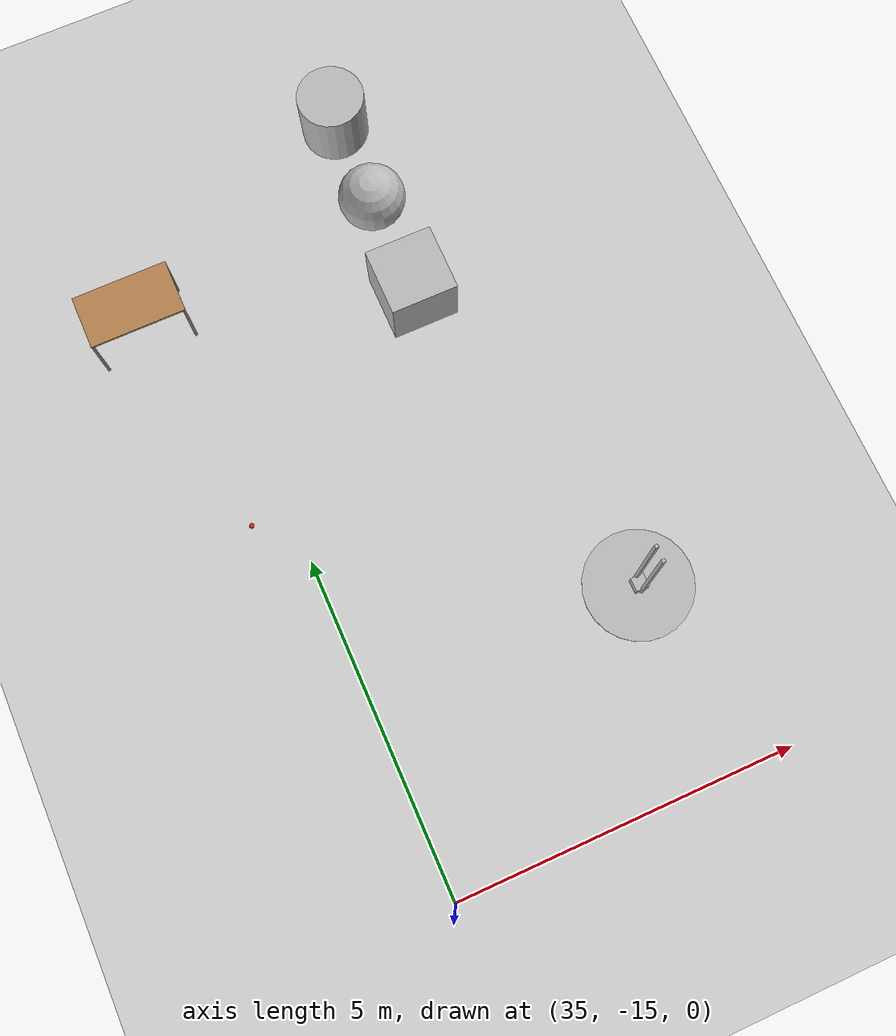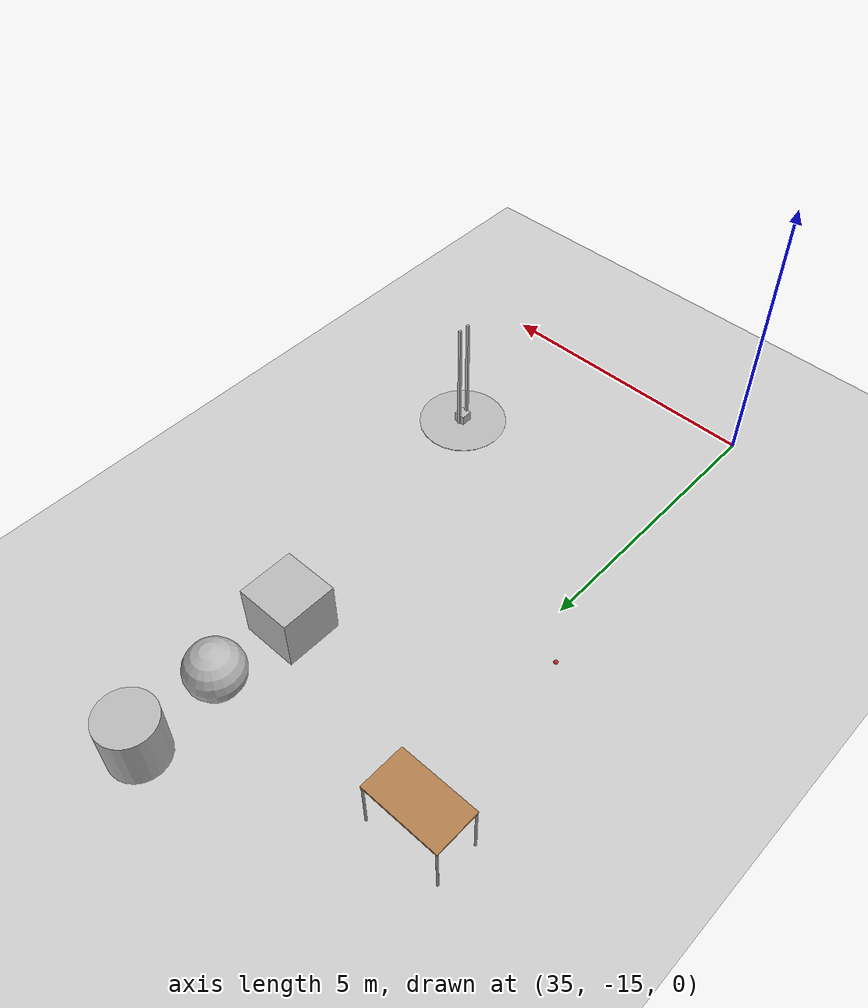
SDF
<sdf version="1.6">
 <world name="default">
  <model name="ground_plane">
   <static>1</static>
   <link name="link">
    <collision name="collision">
     <geometry><plane><normal>0 0 1</normal><size>100 100</size></plane></geometry>
     <surface><friction><ode><mu>100</mu><mu2>50</mu2></ode></friction></surface>
    </collision>
    <visual name="visual">
     <cast_shadows>0</cast_shadows>
     <geometry><plane><normal>0 0 1</normal><size>100 100</size></plane></geometry>
     <material>
      <script><uri>file://media/materials/scripts/gazebo.material</uri><name>Gazebo/Grey</name></script>
     </material>
    </visual>
   </link>
  </model>
  <model name="mass_on_rails">
   <link name="base">
    <inertial>
     <mass>100</mass>
     <inertia><ixx>1</ixx><ixy>0</ixy><ixz>0</ixz><iyy>1</iyy><iyz>0</iyz><izz>1</izz></inertia>
    </inertial>
    <visual name="vis_base">
     <pose>0 0 0.01 0 -0 0</pose>
     <geometry><cylinder><radius>0.8</radius><length>0.01</length></cylinder></geometry>
    </visual>
    <collision name="col_base">
     <pose>0 0 0.01 0 -0 0</pose>
     <geometry><cylinder><radius>0.8</radius><length>0.01</length></cylinder></geometry>
    </collision>
    <visual name="vis_rail1">
     <pose>0 0.1 1.1 0 -0 0</pose>
     <geometry><box><size>0.05 0.05 2.2</size></box></geometry>
    </visual>
    <collision name="col_rail1">
     <pose>0 0.1 1.1 0 -0 0</pose>
     <geometry><box><size>0.05 0.05 2.2</size></box></geometry>
    </collision>
    <visual name="vis_rail2">
     <pose>0 -0.1 1.1 0 -0 0</pose>
     <geometry><box><size>0.05 0.05 2.2</size></box></geometry>
    </visual>
    <collision name="col_rail2">
     <pose>0 -0.1 1.1 0 -0 0</pose>
     <geometry><box><size>0.05 0.05 2.2</size></box></geometry>
    </collision>
   </link>
   <link name="mass">
    <inertial>
     <mass>0.1</mass>
     <pose>0 0 0.1 0 -0 0</pose>
     <inertia><ixx>0.00067</ixx><ixy>0</ixy><ixz>0</ixz><iyy>0.00067</iyy><iyz>0</iyz><izz>0.00067</izz></inertia>
    </inertial>
    <visual name="visual">
     <pose>0 0 0.1 0 -0 0</pose>
     <geometry><box><size>0.2 0.2 0.2</size></box></geometry>
    </visual>
    <collision name="collision">
     <pose>0 0 0.1 0 -0 0</pose>
     <geometry><box><size>0.2 0.2 0.2</size></box></geometry>
    </collision>
   </link>
   <joint name="joint" type="prismatic">
    <parent>base</parent>
    <child>mass</child>
    <axis>
     <dynamics>
      <damping>0.01</damping>
      <friction>0.01</friction>
      <spring_reference>0</spring_reference>
      <spring_stiffness>0</spring_stiffness>
     </dynamics>
     <xyz>0 0 1</xyz>
     <limit><lower>0</lower><upper>2</upper></limit>
     <use_parent_model_frame>0</use_parent_model_frame>
    </axis>
   </joint>
   <pose>39.063 -12.1576 0 0 -0 9e-06</pose>
  </model>
  <model name="cricket_ball">
   <link name="link">
    <pose>0 0 0.0375 0 -0 0</pose>
    <inertial>
     <mass>0.1467</mass>
     <inertia>
      <ixx>8.25187e-05</ixx>
      <ixy>0</ixy>
      <ixz>0</ixz>
      <iyy>8.25187e-05</iyy>
      <iyz>0</iyz>
      <izz>8.25187e-05</izz>
     </inertia>
    </inertial>
    <collision name="collision">
     <geometry><sphere><radius>0.0375</radius></sphere></geometry>
     <surface>
      <contact>
       <poissons_ratio>0.347</poissons_ratio>
       <elastic_modulus>8.8e+09</elastic_modulus>
       <ode><kp>100000</kp><kd>100</kd><max_vel>100</max_vel><min_depth>0.001</min_depth></ode>
      </contact>
      <friction>
       <torsional>
        <coefficient>1</coefficient>
        <use_patch_radius>0</use_patch_radius>
        <surface_radius>0.01</surface_radius>
       </torsional>
      </friction>
     </surface>
    </collision>
    <visual name="visual">
     <geometry><sphere><radius>0.0375</radius></sphere></geometry>
     <material>
      <script><uri>file://media/materials/scripts/gazebo.material</uri><name>Gazebo/Red</name></script>
     </material>
    </visual>
    <velocity_decay><linear>0</linear><angular>0.005</angular></velocity_decay>
   </link>
   <pose>34.4314 -9.18228 -0.001014 0 -0 0</pose>
  </model>
  <model name="textured_shapes">
   <pose>37.913 -5.39494 0.5 0 -0 0</pose>
   <link name="box">
    <pose>0 -1.5 0 0 -0 0</pose>
    <collision name="collision"><geometry><box><size>1 1 1</size></box></geometry></collision>
    <visual name="visual">
     <geometry><box><size>1 1 1</size></box></geometry>
     <material>
      <script>
       <uri>model://textured_shapes/materials/scripts</uri>
       <uri>model://textured_shapes/materials/textures</uri>
       <name>TexturedShape/Squares</name>
      </script>
     </material>
    </visual>
    <inertial>
     <inertia><ixx>1</ixx><ixy>0</ixy><ixz>0</ixz><iyy>1</iyy><iyz>0</iyz><izz>1</izz></inertia>
     <mass>1</mass>
    </inertial>
   </link>
   <link name="sphere">
    <collision name="collision"><geometry><sphere><radius>0.5</radius></sphere></geometry></collision>
    <visual name="visual">
     <geometry><sphere><radius>0.5</radius></sphere></geometry>
     <material>
      <script>
       <uri>model://textured_shapes/materials/scripts</uri>
       <uri>model://textured_shapes/materials/textures</uri>
       <name>TexturedShape/Squares</name>
      </script>
     </material>
    </visual>
    <inertial>
     <inertia><ixx>1</ixx><ixy>0</ixy><ixz>0</ixz><iyy>1</iyy><iyz>0</iyz><izz>1</izz></inertia>
     <mass>1</mass>
    </inertial>
   </link>
   <link name="cylinder">
    <pose>0 1.5 0 0 -0 0</pose>
    <collision name="collision">
     <geometry><cylinder><radius>0.5</radius><length>1</length></cylinder></geometry>
    </collision>
    <visual name="visual">
     <geometry><cylinder><radius>0.5</radius><length>1</length></cylinder></geometry>
     <material>
      <script>
       <uri>model://textured_shapes/materials/scripts</uri>
       <uri>model://textured_shapes/materials/textures</uri>
       <name>TexturedShape/Squares</name>
      </script>
     </material>
    </visual>
    <inertial>
     <inertia><ixx>1</ixx><ixy>0</ixy><ixz>0</ixz><iyy>1</iyy><iyz>0</iyz><izz>1</izz></inertia>
     <mass>1</mass>
    </inertial>
   </link>
  </model>
  <model name="table">
   <static>0</static>
   <link name="link">
    <collision name="surface">
     <pose>0 0 1 0 -0 0</pose>
     <geometry><box><size>1.5 0.8 0.03</size></box></geometry>
     <surface><friction><ode><mu>0.6</mu><mu2>0.6</mu2></ode></friction></surface>
    </collision>
    <visual name="visual1">
     <pose>0 0 1 0 -0 0</pose>
     <geometry><box><size>1.4 0.8 0.04</size></box></geometry>
     <material>
      <script><uri>file://media/materials/scripts/gazebo.material</uri><name>Gazebo/Wood</name></script>
     </material>
    </visual>
    <collision name="front_left_leg">
     <pose>0.68 0.38 0.5 0 -0 0</pose>
     <geometry><cylinder><radius>0.02</radius><length>1</length></cylinder></geometry>
    </collision>
    <visual name="front_left_leg">
     <pose>0.68 0.38 0.5 0 -0 0</pose>
     <geometry><cylinder><radius>0.02</radius><length>1</length></cylinder></geometry>
     <material>
      <script><uri>file://media/materials/scripts/gazebo.material</uri><name>Gazebo/Grey</name></script>
     </material>
    </visual>
    <collision name="front_right_leg">
     <pose>0.68 -0.38 0.5 0 -0 0</pose>
     <geometry><cylinder><radius>0.02</radius><length>1</length></cylinder></geometry>
    </collision>
    <visual name="front_right_leg">
     <pose>0.68 -0.38 0.5 0 -0 0</pose>
     <geometry><cylinder><radius>0.02</radius><length>1</length></cylinder></geometry>
     <material>
      <script><uri>file://media/materials/scripts/gazebo.material</uri><name>Gazebo/Grey</name></script>
     </material>
    </visual>
    <collision name="back_right_leg">
     <pose>-0.68 -0.38 0.5 0 -0 0</pose>
     <geometry><cylinder><radius>0.02</radius><length>1</length></cylinder></geometry>
    </collision>
    <visual name="back_right_leg">
     <pose>-0.68 -0.38 0.5 0 -0 0</pose>
     <geometry><cylinder><radius>0.02</radius><length>1</length></cylinder></geometry>
     <material>
      <script><uri>file://media/materials/scripts/gazebo.material</uri><name>Gazebo/Grey</name></script>
     </material>
    </visual>
    <collision name="back_left_leg">
     <pose>-0.68 0.38 0.5 0 -0 0</pose>
     <geometry><cylinder><radius>0.02</radius><length>1</length></cylinder></geometry>
    </collision>
    <visual name="back_left_leg">
     <pose>-0.68 0.38 0.5 0 -0 0</pose>
     <geometry><cylinder><radius>0.02</radius><length>1</length></cylinder></geometry>
     <material>
      <script><uri>file://media/materials/scripts/gazebo.material</uri><name>Gazebo/Grey</name></script>
     </material>
    </visual>
    <inertial>
     <inertia><ixx>1</ixx><ixy>0</ixy><ixz>0</ixz><iyy>1</iyy><iyz>0</iyz><izz>1</izz></inertia>
     <mass>1</mass>
    </inertial>
   </link>
   <pose>34.0722 -5.77416 -1e-06 0 1e-06 0</pose>
  </model>
 </world>
</sdf>
